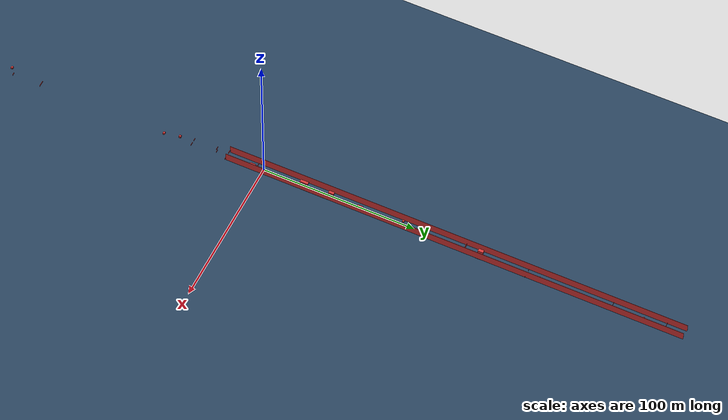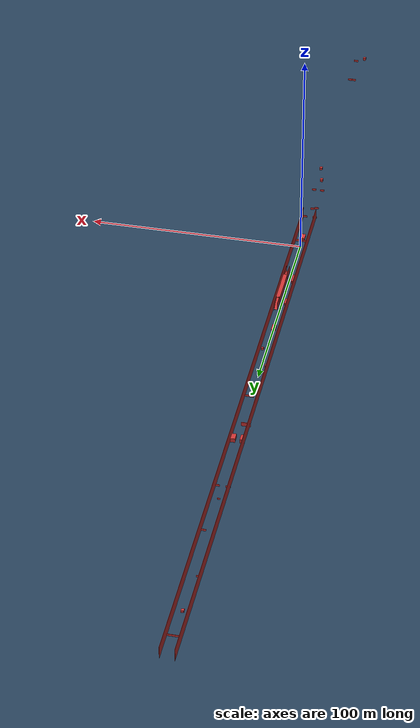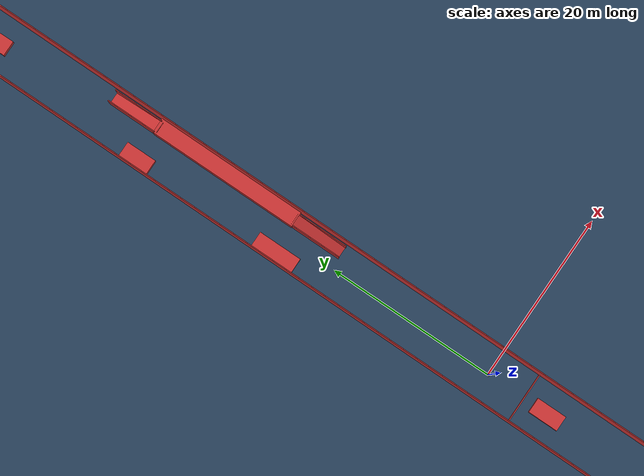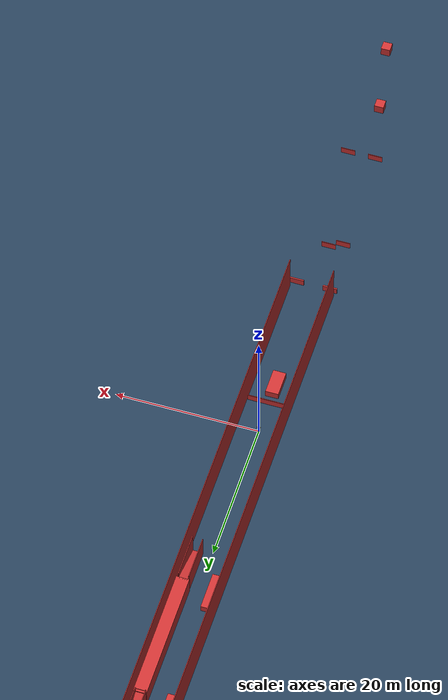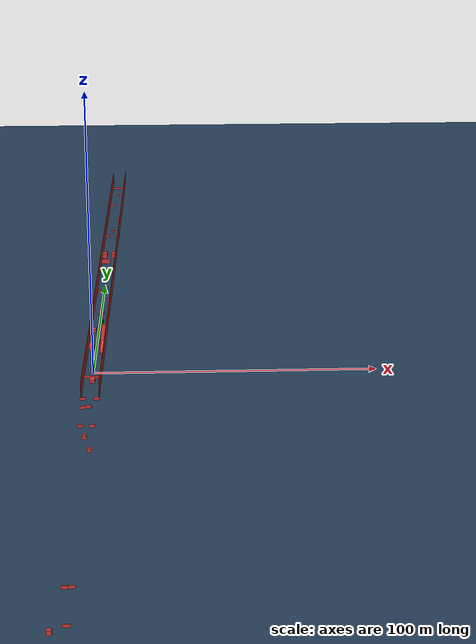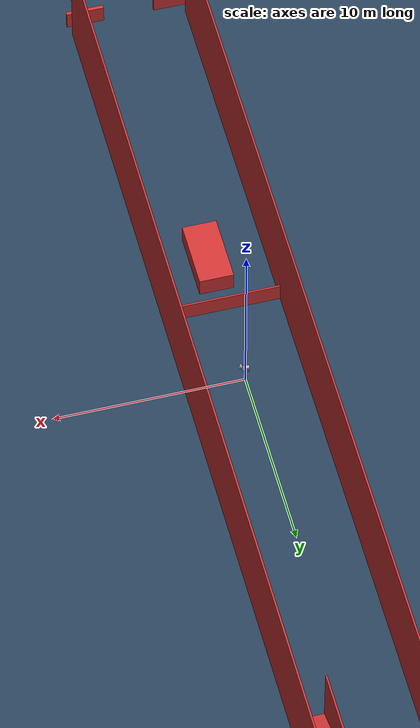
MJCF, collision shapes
<mujoco model="XXG scene">
  <include file="xxg.xml" />

  <statistic center="0 0 0.1" extent="0.8" />

  <visual>
    <headlight diffuse="0.6 0.6 0.6" ambient="0.3 0.3 0.3" specular="0 0 0" />
    <rgba haze="0.15 0.25 0.35 1" />
    <global azimuth="-130" elevation="-20" />
    <map znear="0.01" zfar="100"/>
  </visual>

  <asset>
    <texture type="skybox" builtin="gradient" rgb1="0.3 0.5 0.7" rgb2="0 0 0" width="512" height="3072" />
    <texture type="2d" name="groundplane" builtin="checker" mark="edge" rgb1="0.2 0.3 0.4" rgb2="0.1 0.2 0.3" markrgb="0.8 0.8 0.8" width="300" height="300" />
    <material name="groundplane" texture="groundplane" texuniform="true" texrepeat="5 5" reflectance="0.2" />
  <hfield name="perlin_hfield" size="1.0 0.75 0.2 0.2" file="../height_field.png" /><hfield name="image_hfield" size="1.0 1.0 0.02 0.1" file="../unitree_hfield.png" /></asset>

  <worldbody>
    <light pos="0 0 1.5" dir="0 0 -1" directional="true" />
    <geom name="floor" pos="0 0.0 0.01" size="0 0 0.05" type="plane" material="groundplane" />
<geom name="Cube" type="box" size="0.65 0.65 0.65" pos="-2.0 -173.7 0.6" quat="1.0 0.0 0.0 0.0" rgba="0.8 0.2 0.2 1" solref="0.02 1" solimp="0.9 0.95 0.001"/>
<geom name="Cube2" type="box" size="1.0 0.075 0.5" pos="2.0 -170.8 0.5" quat="1.0 0.0 0.0 0.0" rgba="0.8 0.2 0.2 1" solref="0.02 1" solimp="0.9 0.95 0.001"/>
<geom name="Cube3" type="box" size="1.0 0.075 0.5" pos="2.0 -151.8 0.5" quat="1.0 0.0 0.0 0.0" rgba="0.8 0.2 0.2 1" solref="0.02 1" solimp="0.9 0.95 0.001"/>
<geom name="Cube4" type="box" size="1.0 0.075 0.5" pos="0.2 -151.8 0.5" quat="1.0 0.0 0.0 0.0" rgba="0.8 0.2 0.2 1" solref="0.02 1" solimp="0.9 0.95 0.001"/>
<geom name="Cube5" type="box" size="0.65 0.65 0.65" pos="2.0 -66.7 0.6" quat="1.0 0.0 0.0 0.0" rgba="0.8 0.2 0.2 1" solref="0.02 1" solimp="0.9 0.95 0.001"/>
<geom name="Cube6" type="box" size="0.65 0.65 0.65" pos="0.0 -56.7 0.6" quat="1.0 0.0 0.0 0.0" rgba="0.8 0.2 0.2 1" solref="0.02 1" solimp="0.9 0.95 0.001"/>
<geom name="Cube7" type="box" size="1.0 0.05 0.5" pos="-1.9 -47.9 0.5" quat="1.0 0.0 0.0 0.0" rgba="0.8 0.2 0.2 1" solref="0.02 1" solimp="0.9 0.95 0.001"/>
<geom name="Cube8" type="box" size="1.0 0.05 0.5" pos="2.0 -47.9 0.5" quat="1.0 0.0 0.0 0.0" rgba="0.8 0.2 0.2 1" solref="0.02 1" solimp="0.9 0.95 0.001"/>
<geom name="Cube9" type="box" size="1.0 0.05 0.5" pos="-1.9 -32.5 0.5" quat="1.0 0.0 0.0 0.0" rgba="0.8 0.2 0.2 1" solref="0.02 1" solimp="0.9 0.95 0.001"/>
<geom name="Cube10" type="box" size="1.0 0.05 0.5" pos="-0.1 -31.7 0.5" quat="1.0 0.0 0.0 0.0" rgba="0.8 0.2 0.2 1" solref="0.02 1" solimp="0.9 0.95 0.001"/>
<geom name="Cube11" type="box" size="1.0 0.1 0.5" pos="-2.4 -24.7 0.5" quat="1.0 0.0 0.0 0.0" rgba="0.8 0.2 0.2 1" solref="0.02 1" solimp="0.9 0.95 0.001"/>
<geom name="Cube12" type="box" size="1.0 0.1 0.5" pos="2.3 -24.7 0.5" quat="1.0 0.0 0.0 0.0" rgba="0.8 0.2 0.2 1" solref="0.02 1" solimp="0.9 0.95 0.001"/>
<geom name="Cube13" type="box" size="0.9 1.8 0.529412" pos="0.0 -7.6 0.5" quat="1.0 0.0 0.0 0.0" rgba="0.8 0.2 0.2 1" solref="0.02 1" solimp="0.9 0.95 0.001"/>
<geom name="Cube14" type="box" size="0.9 1.8 0.529412" pos="-2.0 44.4 0.5" quat="1.0 0.0 0.0 0.0" rgba="0.8 0.2 0.2 1" solref="0.02 1" solimp="0.9 0.95 0.001"/>
<geom name="Cube15" type="box" size="0.9 1.8 0.529412" pos="0.0 64.4 0.5" quat="1.0 0.0 0.0 0.0" rgba="0.8 0.2 0.2 1" solref="0.02 1" solimp="0.9 0.95 0.001"/>
<geom name="Cube16" type="box" size="0.9 2.6 0.5" pos="-2.0 26.3 0.5" quat="1.0 0.0 0.0 0.0" rgba="0.8 0.2 0.2 1" solref="0.02 1" solimp="0.9 0.95 0.001"/>
<geom name="Cube17" type="box" size="0.9 9.0 1.5" pos="2.1 35.4 1.17" quat="1.0 0.0 0.0 0.0" rgba="0.8 0.2 0.2 1" solref="0.02 1" solimp="0.9 0.95 0.001"/>
<geom name="Cube18" type="box" size="0.5 0.5 0.5" pos="2.0 80.3 0.5" quat="1.0 0.0 0.0 0.0" rgba="0.8 0.2 0.2 1" solref="0.02 1" solimp="0.9 0.95 0.001"/>
<geom name="Cube19" type="box" size="0.6 0.6 0.5" pos="-2.0 92.3 0.5" quat="1.0 0.0 0.0 0.0" rgba="0.8 0.2 0.2 1" solref="0.02 1" solimp="0.9 0.95 0.001"/>
<geom name="Cube20" type="box" size="1.0 0.05 0.5" pos="2.2 114.2 0.5" quat="1.0 0.0 0.0 0.0" rgba="0.8 0.2 0.2 1" solref="0.02 1" solimp="0.9 0.95 0.001"/>
<geom name="Cube21" type="box" size="1.0 0.05 0.5" pos="0.25 114.2 0.5" quat="1.0 0.0 0.0 0.0" rgba="0.8 0.2 0.2 1" solref="0.02 1" solimp="0.9 0.95 0.001"/>
<geom name="Cube22" type="box" size="2.0 0.1 1.0" pos="-1.35 133.5 0.5" quat="1.0 0.0 0.0 0.0" rgba="0.8 0.2 0.2 1" solref="0.02 1" solimp="0.9 0.95 0.001"/>
<geom name="Cube23" type="box" size="1.0 0.05 0.5" pos="2.3 174.3 0.5" quat="1.0 0.0 0.0 0.0" rgba="0.8 0.2 0.2 1" solref="0.02 1" solimp="0.9 0.95 0.001"/>
<geom name="Cube24" type="box" size="1.0 0.05 0.5" pos="-2.3 174.3 0.5" quat="1.0 0.0 0.0 0.0" rgba="0.8 0.2 0.2 1" solref="0.02 1" solimp="0.9 0.95 0.001"/>
<geom name="Cube25" type="box" size="0.65 0.05 0.375" pos="0.0 182.3 0.4" quat="1.0 0.0 0.0 0.0" rgba="0.8 0.2 0.2 1" solref="0.02 1" solimp="0.9 0.95 0.001"/>
<geom name="Cube26" type="box" size="1.0 0.05 0.5" pos="2.0 202.2 0.5" quat="1.0 0.0 0.0 0.0" rgba="0.8 0.2 0.2 1" solref="0.02 1" solimp="0.9 0.95 0.001"/>
<geom name="Cube27" type="box" size="1.0 0.05 0.5" pos="-2.0 229.2 0.5" quat="1.0 0.0 0.0 0.0" rgba="0.8 0.2 0.2 1" solref="0.02 1" solimp="0.9 0.95 0.001"/>
<geom name="Cube28" type="box" size="0.6 0.6 0.5" pos="0.0 249.3 0.5" quat="1.0 0.0 0.0 0.0" rgba="0.8 0.2 0.2 1" solref="0.02 1" solimp="0.9 0.95 0.001"/>
<geom name="phs_Cube" type="box" size="3.0 0.05 0.5" pos="0.0 -4.56 0.5" quat="1.0 0.0 0.0 0.0" rgba="0.8 0.2 0.2 1" solref="0.02 1" solimp="0.9 0.95 0.001"/>
<geom name="phs_Cube2" type="box" size="3.0 0.05 0.5" pos="0.0 263.34 0.5" quat="1.0 0.0 0.0 0.0" rgba="0.8 0.2 0.2 1" solref="0.02 1" solimp="0.9 0.95 0.001"/>
<geom name="Cube29" type="box" size="0.65 0.05 3.35" pos="2.02 23.5 1.32" quat="0.833886 -0.551937 0.0 0.0" rgba="0.8 0.2 0.2 1" solref="0.02 1" solimp="0.9 0.95 0.001"/>
<geom name="Cube30" type="box" size="0.65 0.05 3.4" pos="2.02 47.13 1.32" quat="0.833886 0.551937 0.0 0.0" rgba="0.8 0.2 0.2 1" solref="0.02 1" solimp="0.9 0.95 0.001"/>
<geom name="Cube31" type="box" size="3.0 0.05 2.0" pos="1.31 23.35 1.32" quat="0.707107 0.0 0.0 0.707107" rgba="0.8 0.2 0.2 1" solref="0.02 1" solimp="0.9 0.95 0.001"/>
<geom name="Cube32" type="box" size="3.0 0.05 2.0" pos="2.72 23.35 1.32" quat="0.707107 0.0 0.0 0.707107" rgba="0.8 0.2 0.2 1" solref="0.02 1" solimp="0.9 0.95 0.001"/>
<geom name="Cube33" type="box" size="3.0 0.05 2.0" pos="1.31 47.25 1.32" quat="0.707107 0.0 0.0 0.707107" rgba="0.8 0.2 0.2 1" solref="0.02 1" solimp="0.9 0.95 0.001"/>
<geom name="Cube34" type="box" size="3.0 0.05 2.0" pos="2.72 47.25 1.32" quat="0.707107 0.0 0.0 0.707107" rgba="0.8 0.2 0.2 1" solref="0.02 1" solimp="0.9 0.95 0.001"/>
<geom name="Cube35" type="box" size="1.0 1.7 1.0" pos="-2.01 143.3 0.5" quat="1.0 0.0 0.0 0.0" rgba="0.8 0.2 0.2 1" solref="0.02 1" solimp="0.9 0.95 0.001"/>
<geom name="Cube36" type="box" size="1.0 1.7 1.0" pos="2.01 143.3 0.5" quat="1.0 0.0 0.0 0.0" rgba="0.8 0.2 0.2 1" solref="0.02 1" solimp="0.9 0.95 0.001"/>
<geom name="phs_Cube3" type="box" size="150.0 0.05 3.0" pos="3.1 125.94 3.0" quat="0.707107 0.0 0.0 0.707107" rgba="0.8 0.2 0.2 1" solref="0.02 1" solimp="0.9 0.95 0.001"/>
<geom name="phs_Cube4" type="box" size="150.0 0.05 3.0" pos="-3.05 125.94 3.0" quat="0.707107 0.0 0.0 0.707107" rgba="0.8 0.2 0.2 1" solref="0.02 1" solimp="0.9 0.95 0.001"/>
    </worldbody>
</mujoco>

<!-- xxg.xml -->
<mujoco model="DOG">
  <compiler angle="radian" meshdir="assets/"/>

  <asset>
    <mesh name="BASE_LINK" file="BASE_LINK.STL"/>
    <mesh name="FBL_ABAD_LINK" file="FBL_ABAD_LINK.STL"/>
    <mesh name="FBL_HIP_LINK" file="FBL_HIP_LINK.STL"/>
    <mesh name="FBL_KNEE_LINK" file="FBL_KNEE_LINK.STL"/>
    <mesh name="FBL_FOOT_LINK" file="FBL_FOOT_LINK.STL"/>
    <mesh name="FAR_ABAD_LINK" file="FAR_ABAD_LINK.STL"/>
    <mesh name="FAR_HIP_LINK" file="FAR_HIP_LINK.STL"/>
    <mesh name="FAR_KNEE_LINK" file="FAR_KNEE_LINK.STL"/>
    <mesh name="FAR_FOOT_LINK" file="FAR_FOOT_LINK.STL"/>
    <mesh name="RAR_ABAD_LINK" file="RAR_ABAD_LINK.STL"/>
    <mesh name="RAR_HIP_LINK" file="RAR_HIP_LINK.STL"/>
    <mesh name="RAR_KNEE_LINK" file="RAR_KNEE_LINK.STL"/>
    <mesh name="RAR_FOOT_LINK" file="RAR_FOOT_LINK.STL"/>
    <mesh name="RBL_ABAD_LINK" file="RBL_ABAD_LINK.STL"/>
    <mesh name="RBL_HIP_LINK" file="RBL_HIP_LINK.STL"/>
    <mesh name="RBL_KNEE_LINK" file="RBL_KNEE_LINK.STL"/>
    <mesh name="RBL_FOOT_LINK" file="RBL_FOOT_LINK.STL"/>
    <mesh name="HEAD1_LINK" file="HEAD1_LINK.STL"/>
    <mesh name="HEAD2_LINK" file="HEAD2_LINK.STL"/>
  </asset>

  <worldbody>
    <body name="BASE_LINK" pos="0 0 1.0">
      <inertial pos="1.8341473e-02 -1.9475667e-04 1.6646741e-02" quat="-0 0 0 1" mass="5.6608325" diaginertia="0.039340224 8.8059075e-02 7.6312096e-02"/>
      <freejoint />
      <site name="imu" pos="0.0 0 0.0" />
    <!-- add livox_imu -->
    <site name="livox_imu" pos="0.18 0.0 0.3" quat="1.0 0.0 0.0 0.0"/>
    <!-- add camera imu -->
    <site name="camera_imu" pos="0.18 0.0 0.3" quat="1.0 0.0 0.0 0.0"/>

    <geom type="mesh" contype="0" conaffinity="0" group="1" density="0" rgba="0.75294 0.75294 0.75294 1.0" mesh="BASE_LINK"/>
    <geom size="0.2 0.075 0.055" type="box" rgba="0.75294 0.75294 0.75294 0.0"/>
    <geom pos="0.1775 0 0.1164" quat="0.965249 0 0.26133 0" type="mesh" contype="0" conaffinity="0" group="1" density="0" rgba="0.75294 0.75294 0.75294 1.0" mesh="HEAD1_LINK"/>
    <geom pos="0.1775 0 0.1164" quat="0.965249 0 0.26133 0" type="mesh" contype="0" conaffinity="0" group="1" density="0" rgba="0.75294 0.75294 0.75294 1.0" mesh="HEAD2_LINK"/>
    <geom size="0.05 0.1 0.06" pos="0.204181 0 0.181884" quat="0.965249 0 0.26133 0" type="box" rgba="0.75294 0.75294 0.75294 0.0"/>
    <geom size="0.035 0.05 0.04" pos="0.27432 0 0.123528" quat="0.965249 0 0.26133 0" type="box" rgba="0.75294 0.75294 0.75294 0.0"/>
    <body name="FBL_ABAD_LINK" pos="0.1305 0.0377 0">
      <inertial pos="-0.0258732 0.00474653 0" quat="0.446156 0.446156 0.548585 0.548585" mass="0.29007" diaginertia="0.000234429 0.000228281 4.61129e-05"/>
      <joint name="FBL_ABAD_JOINT" pos="0 0 0" axis="1 0 0" range="-0.4887 0.4887" actuatorfrcrange="-20 20"/>
      <geom type="mesh" contype="0" conaffinity="0" group="1" density="0" rgba="0.75294 0.75294 0.75294 1.0" mesh="FBL_ABAD_LINK"/>
      <body name="FBL_HIP_LINK">
        <inertial pos="0 0.0475203 -0.0615104" quat="0.992663 0.120643 7.95638e-06 -0.00808508" mass="0.698577" diaginertia="0.00315469 0.00310141 0.000383698"/>
        <joint name="FBL_HIP_JOINT" pos="0 0 0" axis="0 1 0" range="-2.967 2.967" actuatorfrcrange="-20 20"/>
        <geom type="mesh" contype="0" conaffinity="0" group="1" density="0" rgba="0.75294 0.75294 0.75294 1.0" mesh="FBL_HIP_LINK"/>
        <geom size="0.025 0.015 0.03" pos="-0.01 0.085 -0.06" type="box" rgba="0.75294 0.75294 0.75294 1.0"/>
        <body name="FBL_KNEE_LINK" pos="0 0.08786 -0.1307">
          <inertial pos="0.00368489 0.0063771 -0.0635258" quat="0.608469 0.0177668 -0.0332576 0.792681" mass="0.288584" diaginertia="0.00161384 0.00159203 5.37708e-05"/>
          <joint name="FBL_KNEE_JOINT" pos="0 0 0" axis="0 1 0" range="-2.723 2.702" actuatorfrcrange="-20 20"/>
          <geom type="mesh" contype="0" conaffinity="0" group="1" density="0" rgba="0.49804 0.49804 0.49804 1.0" mesh="FBL_KNEE_LINK"/>
          <geom size="0.015 0.01 0.045" pos="0 0 -0.05" quat="0.994493 0 0.104807 0" type="box" rgba="0.49804 0.49804 0.49804 1.0"/>
          <geom pos="0 0 -0.1425" type="mesh" contype="0" conaffinity="0" group="1" density="0" rgba="0.75294 0.75294 0.75294 1.0" mesh="FBL_FOOT_LINK"/>
          <geom size="0.03" pos="0 0 -0.1425" quat="0.707388 0.706825 0 0" rgba="0.75294 0.75294 0.75294 1.0"/>
        </body>
      </body>
    </body>
    <body name="FAR_ABAD_LINK" pos="0.1305 -0.0377 0">
      <inertial pos="-0.0258732 -0.00474653 0" quat="0.548585 0.548585 0.446156 0.446156" mass="0.29007" diaginertia="0.000234429 0.000228281 4.61129e-05"/>
      <joint name="FAR_ABAD_JOINT" pos="0 0 0" axis="1 0 0" range="-0.4887 0.4887" actuatorfrcrange="-20 20"/>
      <geom type="mesh" contype="0" conaffinity="0" group="1" density="0" rgba="0.75294 0.75294 0.75294 1.0" mesh="FAR_ABAD_LINK"/>
      <body name="FAR_HIP_LINK">
        <inertial pos="0 -0.0475203 -0.0615104" quat="0.992663 -0.120643 7.95638e-06 0.00808508" mass="0.698577" diaginertia="0.00315469 0.00310141 0.000383698"/>
        <joint name="FAR_HIP_JOINT" pos="0 0 0" axis="0 1 0" range="-2.967 2.967" actuatorfrcrange="-20 20"/>
        <geom type="mesh" contype="0" conaffinity="0" group="1" density="0" rgba="0.75294 0.75294 0.75294 1.0" mesh="FAR_HIP_LINK"/>
        <geom size="0.025 0.015 0.03" pos="-0.01 -0.085 -0.06" type="box" rgba="0.75294 0.75294 0.75294 1.0"/>
        <body name="FAR_KNEE_LINK" pos="0 -0.08786 -0.1307">
          <inertial pos="0.00368489 -0.0063771 -0.0635258" quat="0.792681 -0.0332576 0.0177668 0.608469" mass="0.288584" diaginertia="0.00161384 0.00159203 5.37708e-05"/>
          <joint name="FAR_KNEE_JOINT" pos="0 0 0" axis="0 1 0" range="-2.723 2.702" actuatorfrcrange="-20 20"/>
          <geom type="mesh" contype="0" conaffinity="0" group="1" density="0" rgba="0.49804 0.49804 0.49804 1.0" mesh="FAR_KNEE_LINK"/>
          <geom size="0.015 0.01 0.045" pos="0 0 -0.05" quat="0.994493 0 0.104807 0" type="box" rgba="0.49804 0.49804 0.49804 1.0"/>
          <geom pos="0 0 -0.1425" type="mesh" contype="0" conaffinity="0" group="1" density="0" rgba="0.75294 0.75294 0.75294 1.0" mesh="FAR_FOOT_LINK"/>
          <geom size="0.03" pos="0 0 -0.1425" quat="0.707388 0.706825 0 0" rgba="0.75294 0.75294 0.75294 1.0"/>
        </body>
      </body>
    </body>
    <body name="RAR_ABAD_LINK" pos="-0.1305 -0.0377 0">
      <inertial pos="0.0258732 -0.00474653 0" quat="0.446156 0.446156 0.548585 0.548585" mass="0.29007" diaginertia="0.000234429 0.000228281 4.61129e-05"/>
      <joint name="RAR_ABAD_JOINT" pos="0 0 0" axis="1 0 0" range="-0.4887 0.4887" actuatorfrcrange="-20 20"/>
      <geom type="mesh" contype="0" conaffinity="0" group="1" density="0" rgba="0.75294 0.75294 0.75294 1.0" mesh="RAR_ABAD_LINK"/>
      <body name="RAR_HIP_LINK">
        <inertial pos="0 -0.0475203 -0.0615104" quat="0.992663 -0.120643 7.95638e-06 0.00808508" mass="0.698577" diaginertia="0.00315469 0.00310141 0.000383698"/>
        <joint name="RAR_HIP_JOINT" pos="0 0 0" axis="0 1 0" range="-2.967 2.967" actuatorfrcrange="-20 20"/>
        <geom type="mesh" contype="0" conaffinity="0" group="1" density="0" rgba="0.75294 0.75294 0.75294 1.0" mesh="RAR_HIP_LINK"/>
        <geom size="0.025 0.015 0.03" pos="0 -0.085 -0.06" type="box" rgba="0.75294 0.75294 0.75294 1.0"/>
        <body name="RAR_KNEE_LINK" pos="0 -0.08786 -0.1307">
          <inertial pos="0.00368489 -0.0063771 -0.0634925" quat="0.792566 -0.0333078 0.0177921 0.608615" mass="0.288584" diaginertia="0.0016124 0.00159058 5.37526e-05"/>
          <joint name="RAR_KNEE_JOINT" pos="0 0 0" axis="0 1 0" range="-2.723 2.702" actuatorfrcrange="-20 20"/>
          <geom type="mesh" contype="0" conaffinity="0" group="1" density="0" rgba="0.49804 0.49804 0.49804 1.0" mesh="RAR_KNEE_LINK"/>
          <geom size="0.015 0.01 0.045" pos="-0.01 0 -0.04" quat="0.930508 0 0.366273 0" type="box" rgba="0.49804 0.49804 0.49804 1.0"/>
          <geom pos="0 0 -0.1357" quat="1 0 0 0" type="mesh" contype="0" conaffinity="0" group="1" density="0" rgba="0.75294 0.75294 0.75294 1.0" mesh="RAR_FOOT_LINK"/>
          <geom size="0.03" pos="0 0 -0.1357" quat="0.707388 0.706825 0 0" rgba="0.75294 0.75294 0.75294 1.0"/>
        </body>
      </body>
    </body>
    <body name="RBL_ABAD_LINK" pos="-0.1305 0.0377 0">
      <inertial pos="0.0258732 0.00474653 0" quat="0.548585 0.548585 0.446156 0.446156" mass="0.29007" diaginertia="0.000234429 0.000228281 4.61129e-05"/>
      <joint name="RBL_ABAD_JOINT" pos="0 0 0" axis="1 0 0" range="-0.4887 0.4887" actuatorfrcrange="-20 20"/>
      <geom type="mesh" contype="0" conaffinity="0" group="1" density="0" rgba="0.75294 0.75294 0.75294 1.0" mesh="RBL_ABAD_LINK"/>
      <body name="RBL_HIP_LINK">
        <inertial pos="0 0.0475203 -0.0615104" quat="0.992663 0.120643 7.95638e-06 -0.00808508" mass="0.698577" diaginertia="0.00315469 0.00310141 0.000383698"/>
        <joint name="RBL_HIP_JOINT" pos="0 0 0" axis="0 1 0" range="-2.967 2.967" actuatorfrcrange="-20 20"/>
        <geom type="mesh" contype="0" conaffinity="0" group="1" density="0" rgba="0.75294 0.75294 0.75294 1.0" mesh="RBL_HIP_LINK"/>
        <geom size="0.025 0.015 0.03" pos="0 0.085 -0.06" type="box" rgba="0.75294 0.75294 0.75294 1.0"/>
        <body name="RBL_KNEE_LINK" pos="0 0.08786 -0.1307">
          <inertial pos="0.00368489 0.0063771 -0.0634925" quat="0.608615 0.0177921 -0.0333078 0.792566" mass="0.288584" diaginertia="0.0016124 0.00159058 5.37526e-05"/>
          <joint name="RBL_KNEE_JOINT" pos="0 0 0" axis="0 1 0" range="-2.723 2.702" actuatorfrcrange="-20 20"/>
          <geom type="mesh" contype="0" conaffinity="0" group="1" density="0" rgba="0.49804 0.49804 0.49804 1.0" mesh="RBL_KNEE_LINK"/>
          <geom size="0.015 0.01 0.045" pos="-0.01 0 -0.04" quat="0.930508 0 0.366273 0" type="box" rgba="0.49804 0.49804 0.49804 1.0"/>
          <geom pos="0 0 -0.1357" quat="1 0 0 0" type="mesh" contype="0" conaffinity="0" group="1" density="0" rgba="0.75294 0.75294 0.75294 1.0" mesh="RBL_FOOT_LINK"/>
          <geom size="0.03" pos="0 0 -0.1357" quat="0.707388 0.706825 0 0" rgba="0.75294 0.75294 0.75294 1.0"/>
        </body>
      </body>
    </body>
  </body>
  </worldbody>
    <actuator>
        <motor name="FR_ABAD_LINK" joint="FAR_ABAD_JOINT" />
        <motor name="FR_HIP_LINK" joint="FAR_HIP_JOINT" />
        <motor name="FR_KNEE_LINK" joint="FAR_KNEE_JOINT" />
        <motor name="FL_ABAD_LINK" joint="FBL_ABAD_JOINT" />
        <motor name="FL_HIP_LINK" joint="FBL_HIP_JOINT" />
        <motor name="FL_KNEE_LINK" joint="FBL_KNEE_JOINT" />
        <motor name="RR_ABAD_LINK" joint="RAR_ABAD_JOINT" />
        <motor name="RR_HIP_LINK" joint="RAR_HIP_JOINT" />
        <motor name="RR_KNEE_LINK" joint="RAR_KNEE_JOINT" />
        <motor name="RL_ABAD_LINK" joint="RBL_ABAD_JOINT" />
        <motor name="RL_HIP_LINK" joint="RBL_HIP_JOINT" />
        <motor name="RL_KNEE_LINK" joint="RBL_KNEE_JOINT" />
    </actuator>

    <sensor>
        <jointpos name="FR_hip_pos" joint="FAR_ABAD_JOINT" />
        <jointpos name="FR_thigh_pos" joint="FAR_HIP_JOINT" />
        <jointpos name="FR_calf_pos" joint="FAR_KNEE_JOINT" />
        <jointpos name="FL_hip_pos" joint="FBL_ABAD_JOINT" />
        <jointpos name="FL_thigh_pos" joint="FBL_HIP_JOINT" />
        <jointpos name="FL_calf_pos" joint="FBL_KNEE_JOINT" />
        <jointpos name="RR_hip_pos" joint="RAR_ABAD_JOINT" />
        <jointpos name="RR_thigh_pos" joint="RAR_HIP_JOINT" />
        <jointpos name="RR_calf_pos" joint="RAR_KNEE_JOINT" />
        <jointpos name="RL_hip_pos" joint="RBL_ABAD_JOINT" />
        <jointpos name="RL_thigh_pos" joint="RBL_HIP_JOINT" />
        <jointpos name="RL_calf_pos" joint="RBL_KNEE_JOINT" />

        <jointvel name="FR_hip_vel" joint="FAR_ABAD_JOINT" />
        <jointvel name="FR_thigh_vel" joint="FAR_HIP_JOINT" />
        <jointvel name="FR_calf_vel" joint="FAR_KNEE_JOINT" />
        <jointvel name="FL_hip_vel" joint="FBL_ABAD_JOINT" />
        <jointvel name="FL_thigh_vel" joint="FBL_HIP_JOINT" />
        <jointvel name="FL_calf_vel" joint="FBL_KNEE_JOINT" />
        <jointvel name="RR_hip_vel" joint="RAR_ABAD_JOINT" />
        <jointvel name="RR_thigh_vel" joint="RAR_HIP_JOINT" />
        <jointvel name="RR_calf_vel" joint="RAR_KNEE_JOINT" />
        <jointvel name="RL_hip_vel" joint="RBL_ABAD_JOINT" />
        <jointvel name="RL_thigh_vel" joint="RBL_HIP_JOINT" />
        <jointvel name="RL_calf_vel" joint="RBL_KNEE_JOINT" />

        <jointactuatorfrc name="FR_hip_torque" joint="FAR_ABAD_JOINT" noise="0.01" />
        <jointactuatorfrc name="FR_thigh_torque" joint="FAR_HIP_JOINT" noise="0.01" />
        <jointactuatorfrc name="FR_calf_torque" joint="FAR_KNEE_JOINT" noise="0.01" />
        <jointactuatorfrc name="FL_hip_torque" joint="FBL_ABAD_JOINT" noise="0.01" />
        <jointactuatorfrc name="FL_thigh_torque" joint="FBL_HIP_JOINT" noise="0.01" />
        <jointactuatorfrc name="FL_calf_torque" joint="FBL_KNEE_JOINT" noise="0.01" />
        <jointactuatorfrc name="RR_hip_torque" joint="RAR_ABAD_JOINT" noise="0.01" />
        <jointactuatorfrc name="RR_thigh_torque" joint="RAR_HIP_JOINT" noise="0.01" />
        <jointactuatorfrc name="RR_calf_torque" joint="RAR_KNEE_JOINT" noise="0.01" />
        <jointactuatorfrc name="RL_hip_torque" joint="RBL_ABAD_JOINT" noise="0.01" />
        <jointactuatorfrc name="RL_thigh_torque" joint="RBL_HIP_JOINT" noise="0.01" />
        <jointactuatorfrc name="RL_calf_torque" joint="RBL_KNEE_JOINT" noise="0.01" />

        <framequat name="imu_quat" objtype="site" objname="imu" />
        <gyro name="imu_gyro" site="imu" />
        <accelerometer name="imu_acc" site="imu" />

        <framepos name="frame_pos" objtype="site" objname="imu" />
        <framelinvel name="frame_vel" objtype="site" objname="imu" />

        <!-- add livox_imu -->
        <framequat name="livox_imu_quat" objtype="site" objname="livox_imu" />
        <gyro name="livox_imu_gyro" site="livox_imu" />
        <accelerometer name="livox_imu_acc" site="livox_imu" />

        <framepos name="livox_imu_frame_pos" objtype="site" objname="livox_imu" />
        <framelinvel name="livox_imu_frame_vel" objtype="site" objname="livox_imu" />

        <!-- add camera imu -->
        <framequat name="camera_imu_quat" objtype="site" objname="camera_imu" />
        <gyro name="camera_imu_gyro" site="camera_imu" />
        <accelerometer name="camera_imu_acc" site="camera_imu" />

        <framepos name="camera_imu_frame_pos" objtype="site" objname="camera_imu" />
        <framelinvel name="camera_imu_frame_vel" objtype="site" objname="camera_imu" />
    </sensor>

</mujoco>
